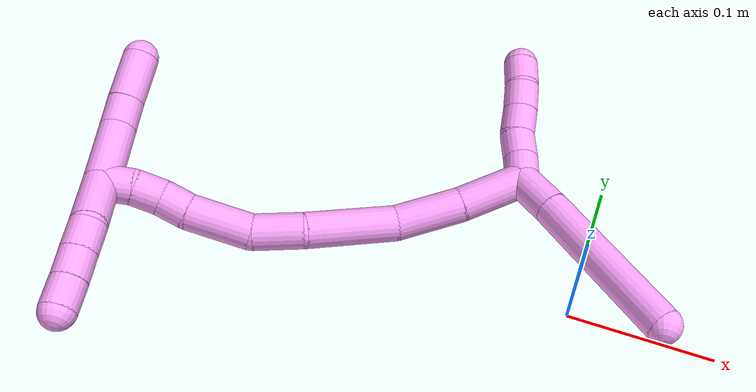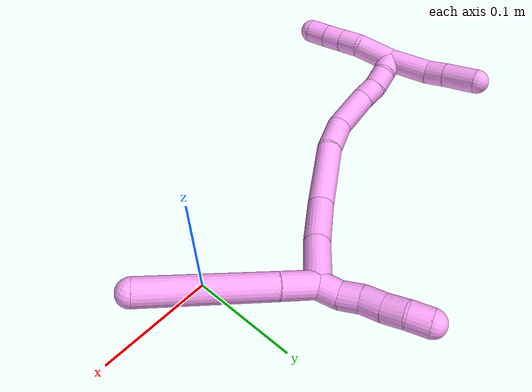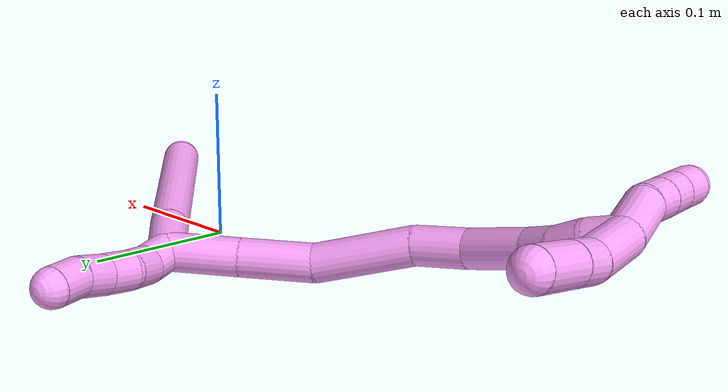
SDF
<sdf version="1.7">
 <world name="default">
  <model name="4">
   <static>0</static>
   <link name="4">
    <collision name="collision-cylinder-e_1_2_8">
     <pose>0.011498 0.001972 -0.01208 -2.97978 0.754159 -2.7377</pose>
     <geometry><cylinder><radius>0.0125</radius><length>0.033587</length></cylinder></geometry>
     <surface>
      <friction><ode><mu>1.16</mu><mu2>1.16</mu2><slip1>0</slip1><slip2>0</slip2></ode></friction>
      <contact><ode><kp>1e+06</kp><kd>1</kd><max_vel>0</max_vel><min_depth>0.001</min_depth></ode></contact>
     </surface>
    </collision>
    <visual name="visual-cylinder-e_1_2_8">
     <pose>0.011498 0.001972 -0.01208 -2.97978 0.754159 -2.7377</pose>
     <geometry><cylinder><radius>0.0125</radius><length>0.033587</length></cylinder></geometry>
     <material><ambient>1 0.65098 0.996078 1</ambient></material>
    </visual>
    <collision name="collision-cylinder-e_2_8_6">
     <pose>0.061058 0.01217 -0.067422 -2.95369 0.712744 -2.64577</pose>
     <geometry><cylinder><radius>0.0125</radius><length>0.116413</length></cylinder></geometry>
     <surface>
      <friction><ode><mu>1.16</mu><mu2>1.16</mu2><slip1>0</slip1><slip2>0</slip2></ode></friction>
      <contact><ode><kp>1e+06</kp><kd>1</kd><max_vel>0</max_vel><min_depth>0.001</min_depth></ode></contact>
     </surface>
    </collision>
    <visual name="visual-cylinder-e_2_8_6">
     <pose>0.061058 0.01217 -0.067422 -2.95369 0.712744 -2.64577</pose>
     <geometry><cylinder><radius>0.0125</radius><length>0.116413</length></cylinder></geometry>
     <material><ambient>1 0.65098 0.996078 1</ambient></material>
    </visual>
    <collision name="collision-cylinder-e_1_2_9">
     <pose>-0.001797 0.000945 0.009792 -0.09626 -0.180717 0.008728</pose>
     <geometry><cylinder><radius>0.0125</radius><length>0.02</length></cylinder></geometry>
     <surface>
      <friction><ode><mu>1.16</mu><mu2>1.16</mu2><slip1>0</slip1><slip2>0</slip2></ode></friction>
      <contact><ode><kp>1e+06</kp><kd>1</kd><max_vel>0</max_vel><min_depth>0.001</min_depth></ode></contact>
     </surface>
    </collision>
    <visual name="visual-cylinder-e_1_2_9">
     <pose>-0.001797 0.000945 0.009792 -0.09626 -0.180717 0.008728</pose>
     <geometry><cylinder><radius>0.0125</radius><length>0.02</length></cylinder></geometry>
     <material><ambient>1 0.65098 0.996078 1</ambient></material>
    </visual>
    <collision name="collision-cylinder-e_2_9_10">
     <pose>-0.005166 -0.00035 0.029202 0.228888 -0.157736 -0.018168</pose>
     <geometry><cylinder><radius>0.0125</radius><length>0.02</length></cylinder></geometry>
     <surface>
      <friction><ode><mu>1.16</mu><mu2>1.16</mu2><slip1>0</slip1><slip2>0</slip2></ode></friction>
      <contact><ode><kp>1e+06</kp><kd>1</kd><max_vel>0</max_vel><min_depth>0.001</min_depth></ode></contact>
     </surface>
    </collision>
    <visual name="visual-cylinder-e_2_9_10">
     <pose>-0.005166 -0.00035 0.029202 0.228888 -0.157736 -0.018168</pose>
     <geometry><cylinder><radius>0.0125</radius><length>0.02</length></cylinder></geometry>
     <material><ambient>1 0.65098 0.996078 1</ambient></material>
    </visual>
    <collision name="collision-cylinder-e_3_10_11">
     <pose>-0.006082 -0.003783 0.048727 0.119739 0.065531 0.003929</pose>
     <geometry><cylinder><radius>0.0125</radius><length>0.02</length></cylinder></geometry>
     <surface>
      <friction><ode><mu>1.16</mu><mu2>1.16</mu2><slip1>0</slip1><slip2>0</slip2></ode></friction>
      <contact><ode><kp>1e+06</kp><kd>1</kd><max_vel>0</max_vel><min_depth>0.001</min_depth></ode></contact>
     </surface>
    </collision>
    <visual name="visual-cylinder-e_3_10_11">
     <pose>-0.006082 -0.003783 0.048727 0.119739 0.065531 0.003929</pose>
     <geometry><cylinder><radius>0.0125</radius><length>0.02</length></cylinder></geometry>
     <material><ambient>1 0.65098 0.996078 1</ambient></material>
    </visual>
    <collision name="collision-cylinder-e_4_11_12">
     <pose>-0.005007 -0.007128 0.06839 0.217249 0.041943 0.004575</pose>
     <geometry><cylinder><radius>0.0125</radius><length>0.02</length></cylinder></geometry>
     <surface>
      <friction><ode><mu>1.16</mu><mu2>1.16</mu2><slip1>0</slip1><slip2>0</slip2></ode></friction>
      <contact><ode><kp>1e+06</kp><kd>1</kd><max_vel>0</max_vel><min_depth>0.001</min_depth></ode></contact>
     </surface>
    </collision>
    <visual name="visual-cylinder-e_4_11_12">
     <pose>-0.005007 -0.007128 0.06839 0.217249 0.041943 0.004575</pose>
     <geometry><cylinder><radius>0.0125</radius><length>0.02</length></cylinder></geometry>
     <material><ambient>1 0.65098 0.996078 1</ambient></material>
    </visual>
    <collision name="collision-cylinder-e_5_12_5">
     <pose>-0.005907 -0.009902 0.08804 0.062591 -0.132329 -0.004149</pose>
     <geometry><cylinder><radius>0.0125</radius><length>0.02</length></cylinder></geometry>
     <surface>
      <friction><ode><mu>1.16</mu><mu2>1.16</mu2><slip1>0</slip1><slip2>0</slip2></ode></friction>
      <contact><ode><kp>1e+06</kp><kd>1</kd><max_vel>0</max_vel><min_depth>0.001</min_depth></ode></contact>
     </surface>
    </collision>
    <visual name="visual-cylinder-e_5_12_5">
     <pose>-0.005907 -0.009902 0.08804 0.062591 -0.132329 -0.004149</pose>
     <geometry><cylinder><radius>0.0125</radius><length>0.02</length></cylinder></geometry>
     <material><ambient>1 0.65098 0.996078 1</ambient></material>
    </visual>
    <collision name="collision-cylinder-e_1_2_13">
     <pose>-0.018555 -0.007595 -0.01241 2.59239 -0.905805 -2.09206</pose>
     <geometry><cylinder><radius>0.0125</radius><length>0.047158</length></cylinder></geometry>
     <surface>
      <friction><ode><mu>1.16</mu><mu2>1.16</mu2><slip1>0</slip1><slip2>0</slip2></ode></friction>
      <contact><ode><kp>1e+06</kp><kd>1</kd><max_vel>0</max_vel><min_depth>0.001</min_depth></ode></contact>
     </surface>
    </collision>
    <visual name="visual-cylinder-e_1_2_13">
     <pose>-0.018555 -0.007595 -0.01241 2.59239 -0.905805 -2.09206</pose>
     <geometry><cylinder><radius>0.0125</radius><length>0.047158</length></cylinder></geometry>
     <material><ambient>1 0.65098 0.996078 1</ambient></material>
    </visual>
    <collision name="collision-cylinder-e_2_13_14">
     <pose>-0.056592 -0.02421 -0.03552 2.44121 -0.947857 -1.904</pose>
     <geometry><cylinder><radius>0.0125</radius><length>0.047976</length></cylinder></geometry>
     <surface>
      <friction><ode><mu>1.16</mu><mu2>1.16</mu2><slip1>0</slip1><slip2>0</slip2></ode></friction>
      <contact><ode><kp>1e+06</kp><kd>1</kd><max_vel>0</max_vel><min_depth>0.001</min_depth></ode></contact>
     </surface>
    </collision>
    <visual name="visual-cylinder-e_2_13_14">
     <pose>-0.056592 -0.02421 -0.03552 2.44121 -0.947857 -1.904</pose>
     <geometry><cylinder><radius>0.0125</radius><length>0.047976</length></cylinder></geometry>
     <material><ambient>1 0.65098 0.996078 1</ambient></material>
    </visual>
    <collision name="collision-cylinder-e_3_14_15">
     <pose>-0.098561 -0.053332 -0.058438 2.11689 -0.762888 -1.23894</pose>
     <geometry><cylinder><radius>0.0125</radius><length>0.065084</length></cylinder></geometry>
     <surface>
      <friction><ode><mu>1.16</mu><mu2>1.16</mu2><slip1>0</slip1><slip2>0</slip2></ode></friction>
      <contact><ode><kp>1e+06</kp><kd>1</kd><max_vel>0</max_vel><min_depth>0.001</min_depth></ode></contact>
     </surface>
    </collision>
    <visual name="visual-cylinder-e_3_14_15">
     <pose>-0.098561 -0.053332 -0.058438 2.11689 -0.762888 -1.23894</pose>
     <geometry><cylinder><radius>0.0125</radius><length>0.065084</length></cylinder></geometry>
     <material><ambient>1 0.65098 0.996078 1</ambient></material>
    </visual>
    <collision name="collision-cylinder-e_4_15_16">
     <pose>-0.135697 -0.081917 -0.074601 2.00623 -1.00237 -1.41949</pose>
     <geometry><cylinder><radius>0.0125</radius><length>0.034763</length></cylinder></geometry>
     <surface>
      <friction><ode><mu>1.16</mu><mu2>1.16</mu2><slip1>0</slip1><slip2>0</slip2></ode></friction>
      <contact><ode><kp>1e+06</kp><kd>1</kd><max_vel>0</max_vel><min_depth>0.001</min_depth></ode></contact>
     </surface>
    </collision>
    <visual name="visual-cylinder-e_4_15_16">
     <pose>-0.135697 -0.081917 -0.074601 2.00623 -1.00237 -1.41949</pose>
     <geometry><cylinder><radius>0.0125</radius><length>0.034763</length></cylinder></geometry>
     <material><ambient>1 0.65098 0.996078 1</ambient></material>
    </visual>
    <collision name="collision-cylinder-e_5_16_17">
     <pose>-0.167739 -0.104134 -0.076582 1.42863 -0.89753 -0.791032</pose>
     <geometry><cylinder><radius>0.0125</radius><length>0.044498</length></cylinder></geometry>
     <surface>
      <friction><ode><mu>1.16</mu><mu2>1.16</mu2><slip1>0</slip1><slip2>0</slip2></ode></friction>
      <contact><ode><kp>1e+06</kp><kd>1</kd><max_vel>0</max_vel><min_depth>0.001</min_depth></ode></contact>
     </surface>
    </collision>
    <visual name="visual-cylinder-e_5_16_17">
     <pose>-0.167739 -0.104134 -0.076582 1.42863 -0.89753 -0.791032</pose>
     <geometry><cylinder><radius>0.0125</radius><length>0.044498</length></cylinder></geometry>
     <material><ambient>1 0.65098 0.996078 1</ambient></material>
    </visual>
    <collision name="collision-cylinder-e_6_17_18">
     <pose>-0.192294 -0.124506 -0.072154 1.21569 -0.791036 -0.565393</pose>
     <geometry><cylinder><radius>0.0125</radius><length>0.020141</length></cylinder></geometry>
     <surface>
      <friction><ode><mu>1.16</mu><mu2>1.16</mu2><slip1>0</slip1><slip2>0</slip2></ode></friction>
      <contact><ode><kp>1e+06</kp><kd>1</kd><max_vel>0</max_vel><min_depth>0.001</min_depth></ode></contact>
     </surface>
    </collision>
    <visual name="visual-cylinder-e_6_17_18">
     <pose>-0.192294 -0.124506 -0.072154 1.21569 -0.791036 -0.565393</pose>
     <geometry><cylinder><radius>0.0125</radius><length>0.020141</length></cylinder></geometry>
     <material><ambient>1 0.65098 0.996078 1</ambient></material>
    </visual>
    <collision name="collision-cylinder-e_7_18_19">
     <pose>-0.205949 -0.138773 -0.069418 1.53483 -0.704941 -0.681948</pose>
     <geometry><cylinder><radius>0.0125</radius><length>0.020044</length></cylinder></geometry>
     <surface>
      <friction><ode><mu>1.16</mu><mu2>1.16</mu2><slip1>0</slip1><slip2>0</slip2></ode></friction>
      <contact><ode><kp>1e+06</kp><kd>1</kd><max_vel>0</max_vel><min_depth>0.001</min_depth></ode></contact>
     </surface>
    </collision>
    <visual name="visual-cylinder-e_7_18_19">
     <pose>-0.205949 -0.138773 -0.069418 1.53483 -0.704941 -0.681948</pose>
     <geometry><cylinder><radius>0.0125</radius><length>0.020044</length></cylinder></geometry>
     <material><ambient>1 0.65098 0.996078 1</ambient></material>
    </visual>
    <collision name="collision-cylinder-e_8_19_1">
     <pose>-0.220314 -0.152755 -0.070173 1.73147 -0.885288 -1.01644</pose>
     <geometry><cylinder><radius>0.0125</radius><length>0.020335</length></cylinder></geometry>
     <surface>
      <friction><ode><mu>1.16</mu><mu2>1.16</mu2><slip1>0</slip1><slip2>0</slip2></ode></friction>
      <contact><ode><kp>1e+06</kp><kd>1</kd><max_vel>0</max_vel><min_depth>0.001</min_depth></ode></contact>
     </surface>
    </collision>
    <visual name="visual-cylinder-e_8_19_1">
     <pose>-0.220314 -0.152755 -0.070173 1.73147 -0.885288 -1.01644</pose>
     <geometry><cylinder><radius>0.0125</radius><length>0.020335</length></cylinder></geometry>
     <material><ambient>1 0.65098 0.996078 1</ambient></material>
    </visual>
    <collision name="collision-cylinder-e_1_1_20">
     <pose>-0.224014 -0.16202 -0.08968 2.98536 0.219387 1.9058</pose>
     <geometry><cylinder><radius>0.0125</radius><length>0.038329</length></cylinder></geometry>
     <surface>
      <friction><ode><mu>1.16</mu><mu2>1.16</mu2><slip1>0</slip1><slip2>0</slip2></ode></friction>
      <contact><ode><kp>1e+06</kp><kd>1</kd><max_vel>0</max_vel><min_depth>0.001</min_depth></ode></contact>
     </surface>
    </collision>
    <visual name="visual-cylinder-e_1_1_20">
     <pose>-0.224014 -0.16202 -0.08968 2.98536 0.219387 1.9058</pose>
     <geometry><cylinder><radius>0.0125</radius><length>0.038329</length></cylinder></geometry>
     <material><ambient>1 0.65098 0.996078 1</ambient></material>
    </visual>
    <collision name="collision-cylinder-e_2_20_21">
     <pose>-0.220129 -0.164669 -0.118555 -3.11647 -0.027449 1.65946</pose>
     <geometry><cylinder><radius>0.0125</radius><length>0.02081</length></cylinder></geometry>
     <surface>
      <friction><ode><mu>1.16</mu><mu2>1.16</mu2><slip1>0</slip1><slip2>0</slip2></ode></friction>
      <contact><ode><kp>1e+06</kp><kd>1</kd><max_vel>0</max_vel><min_depth>0.001</min_depth></ode></contact>
     </surface>
    </collision>
    <visual name="visual-cylinder-e_2_20_21">
     <pose>-0.220129 -0.164669 -0.118555 -3.11647 -0.027449 1.65946</pose>
     <geometry><cylinder><radius>0.0125</radius><length>0.02081</length></cylinder></geometry>
     <material><ambient>1 0.65098 0.996078 1</ambient></material>
    </visual>
    <collision name="collision-cylinder-e_3_21_22">
     <pose>-0.220477 -0.164155 -0.13897 -3.11632 -0.006285 0.487521</pose>
     <geometry><cylinder><radius>0.0125</radius><length>0.020041</length></cylinder></geometry>
     <surface>
      <friction><ode><mu>1.16</mu><mu2>1.16</mu2><slip1>0</slip1><slip2>0</slip2></ode></friction>
      <contact><ode><kp>1e+06</kp><kd>1</kd><max_vel>0</max_vel><min_depth>0.001</min_depth></ode></contact>
     </surface>
    </collision>
    <visual name="visual-cylinder-e_3_21_22">
     <pose>-0.220477 -0.164155 -0.13897 -3.11632 -0.006285 0.487521</pose>
     <geometry><cylinder><radius>0.0125</radius><length>0.020041</length></cylinder></geometry>
     <material><ambient>1 0.65098 0.996078 1</ambient></material>
    </visual>
    <collision name="collision-cylinder-e_4_22_4">
     <pose>-0.220898 -0.163828 -0.159391 -3.13454 -0.034339 2.73669</pose>
     <geometry><cylinder><radius>0.0125</radius><length>0.02082</length></cylinder></geometry>
     <surface>
      <friction><ode><mu>1.16</mu><mu2>1.16</mu2><slip1>0</slip1><slip2>0</slip2></ode></friction>
      <contact><ode><kp>1e+06</kp><kd>1</kd><max_vel>0</max_vel><min_depth>0.001</min_depth></ode></contact>
     </surface>
    </collision>
    <visual name="visual-cylinder-e_4_22_4">
     <pose>-0.220898 -0.163828 -0.159391 -3.13454 -0.034339 2.73669</pose>
     <geometry><cylinder><radius>0.0125</radius><length>0.02082</length></cylinder></geometry>
     <material><ambient>1 0.65098 0.996078 1</ambient></material>
    </visual>
    <collision name="collision-cylinder-e_1_1_23">
     <pose>-0.229569 -0.159181 -0.049048 0.003249 -0.062409 -0.000101</pose>
     <geometry><cylinder><radius>0.0125</radius><length>0.044396</length></cylinder></geometry>
     <surface>
      <friction><ode><mu>1.16</mu><mu2>1.16</mu2><slip1>0</slip1><slip2>0</slip2></ode></friction>
      <contact><ode><kp>1e+06</kp><kd>1</kd><max_vel>0</max_vel><min_depth>0.001</min_depth></ode></contact>
     </surface>
    </collision>
    <visual name="visual-cylinder-e_1_1_23">
     <pose>-0.229569 -0.159181 -0.049048 0.003249 -0.062409 -0.000101</pose>
     <geometry><cylinder><radius>0.0125</radius><length>0.044396</length></cylinder></geometry>
     <material><ambient>1 0.65098 0.996078 1</ambient></material>
    </visual>
    <collision name="collision-cylinder-e_2_23_24">
     <pose>-0.229853 -0.16093 -0.016605 0.16154 0.105245 0.008527</pose>
     <geometry><cylinder><radius>0.0125</radius><length>0.020964</length></cylinder></geometry>
     <surface>
      <friction><ode><mu>1.16</mu><mu2>1.16</mu2><slip1>0</slip1><slip2>0</slip2></ode></friction>
      <contact><ode><kp>1e+06</kp><kd>1</kd><max_vel>0</max_vel><min_depth>0.001</min_depth></ode></contact>
     </surface>
    </collision>
    <visual name="visual-cylinder-e_2_23_24">
     <pose>-0.229853 -0.16093 -0.016605 0.16154 0.105245 0.008527</pose>
     <geometry><cylinder><radius>0.0125</radius><length>0.020964</length></cylinder></geometry>
     <material><ambient>1 0.65098 0.996078 1</ambient></material>
    </visual>
    <collision name="collision-cylinder-e_3_24_3">
     <pose>-0.226551 -0.164771 0.010726 0.12636 0.127404 0.008071</pose>
     <geometry><cylinder><radius>0.0125</radius><length>0.034639</length></cylinder></geometry>
     <surface>
      <friction><ode><mu>1.16</mu><mu2>1.16</mu2><slip1>0</slip1><slip2>0</slip2></ode></friction>
      <contact><ode><kp>1e+06</kp><kd>1</kd><max_vel>0</max_vel><min_depth>0.001</min_depth></ode></contact>
     </surface>
    </collision>
    <visual name="visual-cylinder-e_3_24_3">
     <pose>-0.226551 -0.164771 0.010726 0.12636 0.127404 0.008071</pose>
     <geometry><cylinder><radius>0.0125</radius><length>0.034639</length></cylinder></geometry>
     <material><ambient>1 0.65098 0.996078 1</ambient></material>
    </visual>
    <collision name="collision-sphere-3">
     <pose>-0.22435 -0.166936 0.027768 0 -0 0</pose>
     <geometry><sphere><radius>0.0125</radius></sphere></geometry>
     <surface>
      <friction><ode><mu>1.16</mu><mu2>1.16</mu2><slip1>0</slip1><slip2>0</slip2></ode></friction>
      <contact><ode><kp>1e+06</kp><kd>1</kd><max_vel>0</max_vel><min_depth>0.001</min_depth></ode></contact>
     </surface>
    </collision>
    <visual name="visual-sphere-3">
     <pose>-0.22435 -0.166936 0.027768 0 -0 0</pose>
     <geometry><sphere><radius>0.0125</radius></sphere></geometry>
     <material><ambient>1 0.65098 0.996078 1</ambient></material>
    </visual>
    <collision name="collision-sphere-24">
     <pose>-0.228751 -0.162606 -0.006317 0 -0 0</pose>
     <geometry><sphere><radius>0.0125</radius></sphere></geometry>
     <surface>
      <friction><ode><mu>1.16</mu><mu2>1.16</mu2><slip1>0</slip1><slip2>0</slip2></ode></friction>
      <contact><ode><kp>1e+06</kp><kd>1</kd><max_vel>0</max_vel><min_depth>0.001</min_depth></ode></contact>
     </surface>
    </collision>
    <visual name="visual-sphere-24">
     <pose>-0.228751 -0.162606 -0.006317 0 -0 0</pose>
     <geometry><sphere><radius>0.0125</radius></sphere></geometry>
     <material><ambient>1 0.65098 0.996078 1</ambient></material>
    </visual>
    <collision name="collision-sphere-23">
     <pose>-0.230954 -0.159253 -0.026894 0 -0 0</pose>
     <geometry><sphere><radius>0.0125</radius></sphere></geometry>
     <surface>
      <friction><ode><mu>1.16</mu><mu2>1.16</mu2><slip1>0</slip1><slip2>0</slip2></ode></friction>
      <contact><ode><kp>1e+06</kp><kd>1</kd><max_vel>0</max_vel><min_depth>0.001</min_depth></ode></contact>
     </surface>
    </collision>
    <visual name="visual-sphere-23">
     <pose>-0.230954 -0.159253 -0.026894 0 -0 0</pose>
     <geometry><sphere><radius>0.0125</radius></sphere></geometry>
     <material><ambient>1 0.65098 0.996078 1</ambient></material>
    </visual>
    <collision name="collision-sphere-4">
     <pose>-0.221255 -0.163755 -0.169795 0 -0 0</pose>
     <geometry><sphere><radius>0.0125</radius></sphere></geometry>
     <surface>
      <friction><ode><mu>1.16</mu><mu2>1.16</mu2><slip1>0</slip1><slip2>0</slip2></ode></friction>
      <contact><ode><kp>1e+06</kp><kd>1</kd><max_vel>0</max_vel><min_depth>0.001</min_depth></ode></contact>
     </surface>
    </collision>
    <visual name="visual-sphere-4">
     <pose>-0.221255 -0.163755 -0.169795 0 -0 0</pose>
     <geometry><sphere><radius>0.0125</radius></sphere></geometry>
     <material><ambient>1 0.65098 0.996078 1</ambient></material>
    </visual>
    <collision name="collision-sphere-22">
     <pose>-0.22054 -0.163901 -0.148987 0 -0 0</pose>
     <geometry><sphere><radius>0.0125</radius></sphere></geometry>
     <surface>
      <friction><ode><mu>1.16</mu><mu2>1.16</mu2><slip1>0</slip1><slip2>0</slip2></ode></friction>
      <contact><ode><kp>1e+06</kp><kd>1</kd><max_vel>0</max_vel><min_depth>0.001</min_depth></ode></contact>
     </surface>
    </collision>
    <visual name="visual-sphere-22">
     <pose>-0.22054 -0.163901 -0.148987 0 -0 0</pose>
     <geometry><sphere><radius>0.0125</radius></sphere></geometry>
     <material><ambient>1 0.65098 0.996078 1</ambient></material>
    </visual>
    <collision name="collision-sphere-21">
     <pose>-0.220414 -0.164408 -0.128953 0 -0 0</pose>
     <geometry><sphere><radius>0.0125</radius></sphere></geometry>
     <surface>
      <friction><ode><mu>1.16</mu><mu2>1.16</mu2><slip1>0</slip1><slip2>0</slip2></ode></friction>
      <contact><ode><kp>1e+06</kp><kd>1</kd><max_vel>0</max_vel><min_depth>0.001</min_depth></ode></contact>
     </surface>
    </collision>
    <visual name="visual-sphere-21">
     <pose>-0.220414 -0.164408 -0.128953 0 -0 0</pose>
     <geometry><sphere><radius>0.0125</radius></sphere></geometry>
     <material><ambient>1 0.65098 0.996078 1</ambient></material>
    </visual>
    <collision name="collision-sphere-20">
     <pose>-0.219843 -0.16493 -0.108158 0 -0 0</pose>
     <geometry><sphere><radius>0.0125</radius></sphere></geometry>
     <surface>
      <friction><ode><mu>1.16</mu><mu2>1.16</mu2><slip1>0</slip1><slip2>0</slip2></ode></friction>
      <contact><ode><kp>1e+06</kp><kd>1</kd><max_vel>0</max_vel><min_depth>0.001</min_depth></ode></contact>
     </surface>
    </collision>
    <visual name="visual-sphere-20">
     <pose>-0.219843 -0.16493 -0.108158 0 -0 0</pose>
     <geometry><sphere><radius>0.0125</radius></sphere></geometry>
     <material><ambient>1 0.65098 0.996078 1</ambient></material>
    </visual>
    <collision name="collision-sphere-11">
     <pose>-0.005427 -0.004975 0.058634 0 -0 0</pose>
     <geometry><sphere><radius>0.0125</radius></sphere></geometry>
     <surface>
      <friction><ode><mu>1.16</mu><mu2>1.16</mu2><slip1>0</slip1><slip2>0</slip2></ode></friction>
      <contact><ode><kp>1e+06</kp><kd>1</kd><max_vel>0</max_vel><min_depth>0.001</min_depth></ode></contact>
     </surface>
    </collision>
    <visual name="visual-sphere-11">
     <pose>-0.005427 -0.004975 0.058634 0 -0 0</pose>
     <geometry><sphere><radius>0.0125</radius></sphere></geometry>
     <material><ambient>1 0.65098 0.996078 1</ambient></material>
    </visual>
    <collision name="collision-sphere-10">
     <pose>-0.006736 -0.002591 0.03882 0 -0 0</pose>
     <geometry><sphere><radius>0.0125</radius></sphere></geometry>
     <surface>
      <friction><ode><mu>1.16</mu><mu2>1.16</mu2><slip1>0</slip1><slip2>0</slip2></ode></friction>
      <contact><ode><kp>1e+06</kp><kd>1</kd><max_vel>0</max_vel><min_depth>0.001</min_depth></ode></contact>
     </surface>
    </collision>
    <visual name="visual-sphere-10">
     <pose>-0.006736 -0.002591 0.03882 0 -0 0</pose>
     <geometry><sphere><radius>0.0125</radius></sphere></geometry>
     <material><ambient>1 0.65098 0.996078 1</ambient></material>
    </visual>
    <collision name="collision-sphere-6">
     <pose>0.09912 0.020396 -0.110684 0 -0 0</pose>
     <geometry><sphere><radius>0.0125</radius></sphere></geometry>
     <surface>
      <friction><ode><mu>1.16</mu><mu2>1.16</mu2><slip1>0</slip1><slip2>0</slip2></ode></friction>
      <contact><ode><kp>1e+06</kp><kd>1</kd><max_vel>0</max_vel><min_depth>0.001</min_depth></ode></contact>
     </surface>
    </collision>
    <visual name="visual-sphere-6">
     <pose>0.09912 0.020396 -0.110684 0 -0 0</pose>
     <geometry><sphere><radius>0.0125</radius></sphere></geometry>
     <material><ambient>1 0.65098 0.996078 1</ambient></material>
    </visual>
    <collision name="collision-sphere-9">
     <pose>-0.003595 0.001891 0.019583 0 -0 0</pose>
     <geometry><sphere><radius>0.0125</radius></sphere></geometry>
     <surface>
      <friction><ode><mu>1.16</mu><mu2>1.16</mu2><slip1>0</slip1><slip2>0</slip2></ode></friction>
      <contact><ode><kp>1e+06</kp><kd>1</kd><max_vel>0</max_vel><min_depth>0.001</min_depth></ode></contact>
     </surface>
    </collision>
    <visual name="visual-sphere-9">
     <pose>-0.003595 0.001891 0.019583 0 -0 0</pose>
     <geometry><sphere><radius>0.0125</radius></sphere></geometry>
     <material><ambient>1 0.65098 0.996078 1</ambient></material>
    </visual>
    <collision name="collision-sphere-2">
     <geometry><sphere><radius>0.0125</radius></sphere></geometry>
     <surface>
      <friction><ode><mu>1.16</mu><mu2>1.16</mu2><slip1>0</slip1><slip2>0</slip2></ode></friction>
      <contact><ode><kp>1e+06</kp><kd>1</kd><max_vel>0</max_vel><min_depth>0.001</min_depth></ode></contact>
     </surface>
    </collision>
    <visual name="visual-sphere-2">
     <geometry><sphere><radius>0.0125</radius></sphere></geometry>
     <material><ambient>1 0.65098 0.996078 1</ambient></material>
    </visual>
    <collision name="collision-sphere-19">
     <pose>-0.212443 -0.146401 -0.069143 0 -0 0</pose>
     <geometry><sphere><radius>0.0125</radius></sphere></geometry>
     <surface>
      <friction><ode><mu>1.16</mu><mu2>1.16</mu2><slip1>0</slip1><slip2>0</slip2></ode></friction>
      <contact><ode><kp>1e+06</kp><kd>1</kd><max_vel>0</max_vel><min_depth>0.001</min_depth></ode></contact>
     </surface>
    </collision>
    <visual name="visual-sphere-19">
     <pose>-0.212443 -0.146401 -0.069143 0 -0 0</pose>
     <geometry><sphere><radius>0.0125</radius></sphere></geometry>
     <material><ambient>1 0.65098 0.996078 1</ambient></material>
    </visual>
    <collision name="collision-sphere-8">
     <pose>0.022996 0.003944 -0.02416 0 -0 0</pose>
     <geometry><sphere><radius>0.0125</radius></sphere></geometry>
     <surface>
      <friction><ode><mu>1.16</mu><mu2>1.16</mu2><slip1>0</slip1><slip2>0</slip2></ode></friction>
      <contact><ode><kp>1e+06</kp><kd>1</kd><max_vel>0</max_vel><min_depth>0.001</min_depth></ode></contact>
     </surface>
    </collision>
    <visual name="visual-sphere-8">
     <pose>0.022996 0.003944 -0.02416 0 -0 0</pose>
     <geometry><sphere><radius>0.0125</radius></sphere></geometry>
     <material><ambient>1 0.65098 0.996078 1</ambient></material>
    </visual>
    <collision name="collision-sphere-12">
     <pose>-0.004588 -0.009282 0.078147 0 -0 0</pose>
     <geometry><sphere><radius>0.0125</radius></sphere></geometry>
     <surface>
      <friction><ode><mu>1.16</mu><mu2>1.16</mu2><slip1>0</slip1><slip2>0</slip2></ode></friction>
      <contact><ode><kp>1e+06</kp><kd>1</kd><max_vel>0</max_vel><min_depth>0.001</min_depth></ode></contact>
     </surface>
    </collision>
    <visual name="visual-sphere-12">
     <pose>-0.004588 -0.009282 0.078147 0 -0 0</pose>
     <geometry><sphere><radius>0.0125</radius></sphere></geometry>
     <material><ambient>1 0.65098 0.996078 1</ambient></material>
    </visual>
    <collision name="collision-sphere-5">
     <pose>-0.007227 -0.010522 0.097933 0 -0 0</pose>
     <geometry><sphere><radius>0.0125</radius></sphere></geometry>
     <surface>
      <friction><ode><mu>1.16</mu><mu2>1.16</mu2><slip1>0</slip1><slip2>0</slip2></ode></friction>
      <contact><ode><kp>1e+06</kp><kd>1</kd><max_vel>0</max_vel><min_depth>0.001</min_depth></ode></contact>
     </surface>
    </collision>
    <visual name="visual-sphere-5">
     <pose>-0.007227 -0.010522 0.097933 0 -0 0</pose>
     <geometry><sphere><radius>0.0125</radius></sphere></geometry>
     <material><ambient>1 0.65098 0.996078 1</ambient></material>
    </visual>
    <collision name="collision-sphere-13">
     <pose>-0.03711 -0.01519 -0.02482 0 -0 0</pose>
     <geometry><sphere><radius>0.0125</radius></sphere></geometry>
     <surface>
      <friction><ode><mu>1.16</mu><mu2>1.16</mu2><slip1>0</slip1><slip2>0</slip2></ode></friction>
      <contact><ode><kp>1e+06</kp><kd>1</kd><max_vel>0</max_vel><min_depth>0.001</min_depth></ode></contact>
     </surface>
    </collision>
    <visual name="visual-sphere-13">
     <pose>-0.03711 -0.01519 -0.02482 0 -0 0</pose>
     <geometry><sphere><radius>0.0125</radius></sphere></geometry>
     <material><ambient>1 0.65098 0.996078 1</ambient></material>
    </visual>
    <collision name="collision-sphere-14">
     <pose>-0.076074 -0.03323 -0.046221 0 -0 0</pose>
     <geometry><sphere><radius>0.0125</radius></sphere></geometry>
     <surface>
      <friction><ode><mu>1.16</mu><mu2>1.16</mu2><slip1>0</slip1><slip2>0</slip2></ode></friction>
      <contact><ode><kp>1e+06</kp><kd>1</kd><max_vel>0</max_vel><min_depth>0.001</min_depth></ode></contact>
     </surface>
    </collision>
    <visual name="visual-sphere-14">
     <pose>-0.076074 -0.03323 -0.046221 0 -0 0</pose>
     <geometry><sphere><radius>0.0125</radius></sphere></geometry>
     <material><ambient>1 0.65098 0.996078 1</ambient></material>
    </visual>
    <collision name="collision-sphere-15">
     <pose>-0.121048 -0.073433 -0.070654 0 -0 0</pose>
     <geometry><sphere><radius>0.0125</radius></sphere></geometry>
     <surface>
      <friction><ode><mu>1.16</mu><mu2>1.16</mu2><slip1>0</slip1><slip2>0</slip2></ode></friction>
      <contact><ode><kp>1e+06</kp><kd>1</kd><max_vel>0</max_vel><min_depth>0.001</min_depth></ode></contact>
     </surface>
    </collision>
    <visual name="visual-sphere-15">
     <pose>-0.121048 -0.073433 -0.070654 0 -0 0</pose>
     <geometry><sphere><radius>0.0125</radius></sphere></geometry>
     <material><ambient>1 0.65098 0.996078 1</ambient></material>
    </visual>
    <collision name="collision-sphere-16">
     <pose>-0.150345 -0.090401 -0.078548 0 -0 0</pose>
     <geometry><sphere><radius>0.0125</radius></sphere></geometry>
     <surface>
      <friction><ode><mu>1.16</mu><mu2>1.16</mu2><slip1>0</slip1><slip2>0</slip2></ode></friction>
      <contact><ode><kp>1e+06</kp><kd>1</kd><max_vel>0</max_vel><min_depth>0.001</min_depth></ode></contact>
     </surface>
    </collision>
    <visual name="visual-sphere-16">
     <pose>-0.150345 -0.090401 -0.078548 0 -0 0</pose>
     <geometry><sphere><radius>0.0125</radius></sphere></geometry>
     <material><ambient>1 0.65098 0.996078 1</ambient></material>
    </visual>
    <collision name="collision-sphere-17">
     <pose>-0.185133 -0.117867 -0.074616 0 -0 0</pose>
     <geometry><sphere><radius>0.0125</radius></sphere></geometry>
     <surface>
      <friction><ode><mu>1.16</mu><mu2>1.16</mu2><slip1>0</slip1><slip2>0</slip2></ode></friction>
      <contact><ode><kp>1e+06</kp><kd>1</kd><max_vel>0</max_vel><min_depth>0.001</min_depth></ode></contact>
     </surface>
    </collision>
    <visual name="visual-sphere-17">
     <pose>-0.185133 -0.117867 -0.074616 0 -0 0</pose>
     <geometry><sphere><radius>0.0125</radius></sphere></geometry>
     <material><ambient>1 0.65098 0.996078 1</ambient></material>
    </visual>
    <collision name="collision-sphere-18">
     <pose>-0.199455 -0.131145 -0.069692 0 -0 0</pose>
     <geometry><sphere><radius>0.0125</radius></sphere></geometry>
     <surface>
      <friction><ode><mu>1.16</mu><mu2>1.16</mu2><slip1>0</slip1><slip2>0</slip2></ode></friction>
      <contact><ode><kp>1e+06</kp><kd>1</kd><max_vel>0</max_vel><min_depth>0.001</min_depth></ode></contact>
     </surface>
    </collision>
    <visual name="visual-sphere-18">
     <pose>-0.199455 -0.131145 -0.069692 0 -0 0</pose>
     <geometry><sphere><radius>0.0125</radius></sphere></geometry>
     <material><ambient>1 0.65098 0.996078 1</ambient></material>
    </visual>
    <collision name="collision-sphere-1">
     <pose>-0.228185 -0.159109 -0.071203 0 -0 0</pose>
     <geometry><sphere><radius>0.0125</radius></sphere></geometry>
     <surface>
      <friction><ode><mu>1.16</mu><mu2>1.16</mu2><slip1>0</slip1><slip2>0</slip2></ode></friction>
      <contact><ode><kp>1e+06</kp><kd>1</kd><max_vel>0</max_vel><min_depth>0.001</min_depth></ode></contact>
     </surface>
    </collision>
    <visual name="visual-sphere-1">
     <pose>-0.228185 -0.159109 -0.071203 0 -0 0</pose>
     <geometry><sphere><radius>0.0125</radius></sphere></geometry>
     <material><ambient>1 0.65098 0.996078 1</ambient></material>
    </visual>
    <inertial>
     <pose>-0.096927 -0.0697 -0.045199 0 -0 0</pose>
     <mass>0.75</mass>
     <inertia>
      <ixx>-0.000155</ixx>
      <ixy>0</ixy>
      <ixz>0</ixz>
      <iyy>0.000101</iyy>
      <iyz>0</iyz>
      <izz>-3.3e-05</izz>
     </inertia>
    </inertial>
   </link>
   <pose>-0.056617 0.08315 0.016393 -1.58652 -0.467025 0.181327</pose>
  </model>
 </world>
</sdf>
